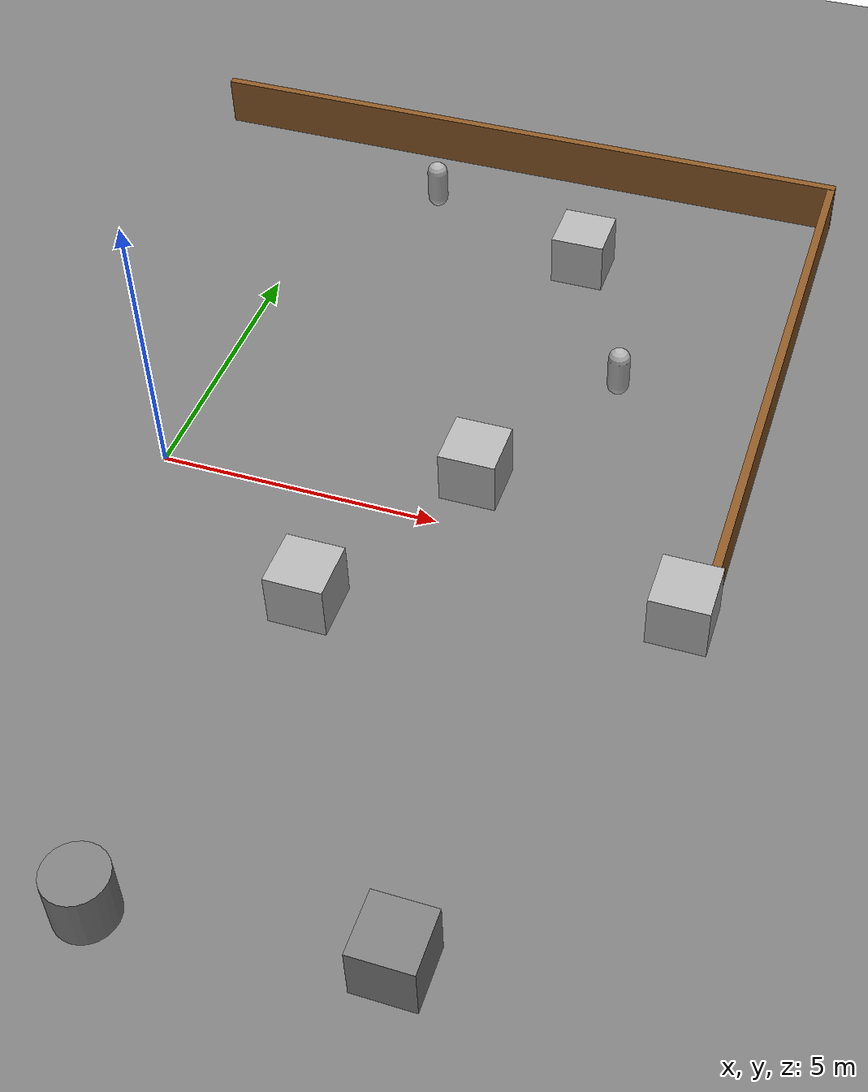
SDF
<sdf version="1.9">
 <world name="default">
  <model name="ground_plane">
   <static>true</static>
   <link name="link">
    <collision name="collision">
     <geometry><plane><normal>0 0 1</normal><size>100 100</size></plane></geometry>
     <surface><friction><ode><mu>100</mu><mu2>50</mu2></ode></friction></surface>
    </collision>
    <visual name="visual">
     <cast_shadows>false</cast_shadows>
     <geometry><plane><normal>0 0 1</normal><size>100 100</size></plane></geometry>
     <material>
      <ambient>0.5 0.5 0.5 1</ambient>
      <diffuse>0.5 0.5 0.5 1</diffuse>
      <specular>0.1 0.1 0.1 1</specular>
     </material>
    </visual>
    <inertial>
     <mass>1</mass>
     <inertia><ixx>1</ixx><ixy>0</ixy><ixz>0</ixz><iyy>1</iyy><iyz>0</iyz><izz>1</izz></inertia>
    </inertial>
   </link>
  </model>
  <model name="wooden_fence">
   <link name="Wall_14">
    <pose>6.425 0 -0.775596 0 -0 1.5708</pose>
    <inertial>
     <inertia><ixx>0</ixx><ixy>0</ixy><ixz>0</ixz><iyy>0</iyy><iyz>0</iyz><izz>0</izz></inertia>
     <mass>0</mass>
    </inertial>
    <visual name="Wall_14_Visual">
     <pose>0 0 1.25 0 -0 0</pose>
     <geometry><box><size>10.5 0.15 1.0201</size></box></geometry>
     <material>
      <ambient>0.55 0.35 0.15 1</ambient>
      <diffuse>0.55 0.35 0.15 1</diffuse>
      <shader type="pixel"/>
     </material>
     <meta><layer>0</layer></meta>
    </visual>
    <collision name="Wall_14_Collision">
     <pose>0 0 1.25 0 -0 0</pose>
     <geometry><box><size>10.5 0.15 1.0201</size></box></geometry>
     <surface>
      <friction>
       <ode><mu>1</mu><mu2>1</mu2><fdir1>0 0 0</fdir1><slip1>0</slip1><slip2>0</slip2></ode>
       <torsional>
        <coefficient>1</coefficient>
        <patch_radius>0</patch_radius>
        <surface_radius>0</surface_radius>
        <use_patch_radius>true</use_patch_radius>
        <ode><slip>0</slip></ode>
       </torsional>
      </friction>
      <bounce><restitution_coefficient>0</restitution_coefficient><threshold>1000000</threshold></bounce>
      <contact>
       <collide_without_contact>false</collide_without_contact>
       <collide_without_contact_bitmask>1</collide_without_contact_bitmask>
       <collide_bitmask>1</collide_bitmask>
       <ode>
        <soft_cfm>0</soft_cfm>
        <soft_erp>0.20000000000000001</soft_erp>
        <kp>10000000000000</kp>
        <kd>1</kd>
        <max_vel>0.01</max_vel>
        <min_depth>0</min_depth>
       </ode>
       <bullet>
        <split_impulse>true</split_impulse>
        <split_impulse_penetration_threshold>-0.01</split_impulse_penetration_threshold>
        <soft_cfm>0</soft_cfm>
        <soft_erp>0.20000000000000001</soft_erp>
        <kp>10000000000000</kp>
        <kd>1</kd>
       </bullet>
      </contact>
     </surface>
    </collision>
   </link>
   <link name="Wall_16">
    <pose>0 5.175 -0.744158 0 -0 3.14159</pose>
    <inertial>
     <inertia><ixx>0</ixx><ixy>0</ixy><ixz>0</ixz><iyy>0</iyy><iyz>0</iyz><izz>0</izz></inertia>
     <mass>0</mass>
    </inertial>
    <visual name="Wall_16_Visual">
     <pose>0 0 1.25 0 -0 0</pose>
     <geometry><box><size>13 0.15 0.970964</size></box></geometry>
     <material>
      <ambient>0.55 0.35 0.15 1</ambient>
      <diffuse>0.55 0.35 0.15 1</diffuse>
      <shader type="pixel"/>
     </material>
     <meta><layer>0</layer></meta>
    </visual>
    <collision name="Wall_16_Collision">
     <pose>0 0 1.25 0 -0 0</pose>
     <geometry><box><size>13 0.15 0.970964</size></box></geometry>
     <surface>
      <friction>
       <ode><mu>1</mu><mu2>1</mu2><fdir1>0 0 0</fdir1><slip1>0</slip1><slip2>0</slip2></ode>
       <torsional>
        <coefficient>1</coefficient>
        <patch_radius>0</patch_radius>
        <surface_radius>0</surface_radius>
        <use_patch_radius>true</use_patch_radius>
        <ode><slip>0</slip></ode>
       </torsional>
      </friction>
      <bounce><restitution_coefficient>0</restitution_coefficient><threshold>1000000</threshold></bounce>
      <contact>
       <collide_without_contact>false</collide_without_contact>
       <collide_without_contact_bitmask>1</collide_without_contact_bitmask>
       <collide_bitmask>1</collide_bitmask>
       <ode>
        <soft_cfm>0</soft_cfm>
        <soft_erp>0.20000000000000001</soft_erp>
        <kp>10000000000000</kp>
        <kd>1</kd>
        <max_vel>0.01</max_vel>
        <min_depth>0</min_depth>
       </ode>
       <bullet>
        <split_impulse>true</split_impulse>
        <split_impulse_penetration_threshold>-0.01</split_impulse_penetration_threshold>
        <soft_cfm>0</soft_cfm>
        <soft_erp>0.20000000000000001</soft_erp>
        <kp>10000000000000</kp>
        <kd>1</kd>
       </bullet>
      </contact>
     </surface>
    </collision>
   </link>
   <static>true</static>
   <pose>3.4044 4.80916 0 0 -0 0</pose>
  </model>
  <model name="unit_box">
   <pose>7.18094 -7.86108 0.5 0 -0 0</pose>
   <link name="link">
    <inertial>
     <mass>1</mass>
     <inertia>
      <ixx>0.16666700000000001</ixx>
      <ixy>0</ixy>
      <ixz>0</ixz>
      <iyy>0.16666700000000001</iyy>
      <iyz>0</iyz>
      <izz>0.16666700000000001</izz>
     </inertia>
    </inertial>
    <collision name="collision"><geometry><box><size>1 1 1</size></box></geometry></collision>
    <visual name="visual">
     <geometry><box><size>1 1 1</size></box></geometry>
     <material>
      <ambient>0.5 0.5 0.5 1</ambient>
      <diffuse>0.5 0.5 0.5 1</diffuse>
      <specular>0.1 0.1 0.1 1</specular>
     </material>
    </visual>
   </link>
   <static>false</static>
  </model>
  <model name="unit_cylinder">
   <pose>2.83688 -8.3326 0.5 0 -0 0</pose>
   <link name="link">
    <inertial>
     <mass>1</mass>
     <inertia>
      <ixx>0.14583299999999999</ixx>
      <ixy>0</ixy>
      <ixz>0</ixz>
      <iyy>0.14583299999999999</iyy>
      <iyz>0</iyz>
      <izz>0.125</izz>
     </inertia>
    </inertial>
    <collision name="collision">
     <geometry><cylinder><radius>0.5</radius><length>1</length></cylinder></geometry>
    </collision>
    <visual name="visual">
     <geometry><cylinder><radius>0.5</radius><length>1</length></cylinder></geometry>
     <material>
      <ambient>0.5 0.5 0.5 1</ambient>
      <diffuse>0.5 0.5 0.5 1</diffuse>
      <specular>0.1 0.1 0.1 1</specular>
     </material>
    </visual>
   </link>
   <static>false</static>
  </model>
  <model name="box_0">
   <pose>9.46219 -0.940838 0.5 0 -0 -6e-06</pose>
   <link name="box_link">
    <inertial>
     <inertia><ixx>0.16666</ixx><ixy>0</ixy><ixz>0</ixz><iyy>0.16666</iyy><iyz>0</iyz><izz>0.16666</izz></inertia>
     <mass>1</mass>
    </inertial>
    <collision name="box_collision"><geometry><box><size>1 1 1</size></box></geometry></collision>
    <visual name="box_visual">
     <geometry><box><size>1 1 1</size></box></geometry>
     <material>
      <ambient>0.3 0.3 0.3 1</ambient>
      <diffuse>0.7 0.7 0.7 1</diffuse>
      <specular>1 1 1 1</specular>
     </material>
    </visual>
   </link>
   <static>false</static>
  </model>
  <model name="box_1">
   <pose>3.65113 -2.32239 0.5 0 0 -0</pose>
   <link name="box_link">
    <inertial>
     <inertia><ixx>0.16666</ixx><ixy>0</ixy><ixz>0</ixz><iyy>0.16666</iyy><iyz>0</iyz><izz>0.16666</izz></inertia>
     <mass>1</mass>
    </inertial>
    <collision name="box_collision"><geometry><box><size>1 1 1</size></box></geometry></collision>
    <visual name="box_visual">
     <geometry><box><size>1 1 1</size></box></geometry>
     <material>
      <ambient>0.3 0.3 0.3 1</ambient>
      <diffuse>0.7 0.7 0.7 1</diffuse>
      <specular>1 1 1 1</specular>
     </material>
    </visual>
   </link>
   <static>false</static>
  </model>
  <model name="box_4">
   <pose>5.5223 7.21539 0.5 0 0 -0</pose>
   <link name="box_link">
    <inertial>
     <inertia><ixx>0.16666</ixx><ixy>0</ixy><ixz>0</ixz><iyy>0.16666</iyy><iyz>0</iyz><izz>0.16666</izz></inertia>
     <mass>1</mass>
    </inertial>
    <collision name="box_collision"><geometry><box><size>1 1 1</size></box></geometry></collision>
    <visual name="box_visual">
     <geometry><box><size>1 1 1</size></box></geometry>
     <material>
      <ambient>0.3 0.3 0.3 1</ambient>
      <diffuse>0.7 0.7 0.7 1</diffuse>
      <specular>1 1 1 1</specular>
     </material>
    </visual>
   </link>
   <static>false</static>
  </model>
  <model name="box_6">
   <pose>5.36196 1.03752 0.5 0 0 -0</pose>
   <link name="box_link">
    <inertial>
     <inertia><ixx>0.16666</ixx><ixy>0</ixy><ixz>0</ixz><iyy>0.16666</iyy><iyz>0</iyz><izz>0.16666</izz></inertia>
     <mass>1</mass>
    </inertial>
    <collision name="box_collision"><geometry><box><size>1 1 1</size></box></geometry></collision>
    <visual name="box_visual">
     <geometry><box><size>1 1 1</size></box></geometry>
     <material>
      <ambient>0.3 0.3 0.3 1</ambient>
      <diffuse>0.7 0.7 0.7 1</diffuse>
      <specular>1 1 1 1</specular>
     </material>
    </visual>
   </link>
   <static>false</static>
  </model>
  <model name="capsule_0">
   <pose>7.07747 4.02448 0.5 0 -0 0</pose>
   <link name="capsule_link">
    <inertial>
     <inertia>
      <ixx>0.074153999999999998</ixx>
      <ixy>0</ixy>
      <ixz>0</ixz>
      <iyy>0.074153999999999998</iyy>
      <iyz>0</iyz>
      <izz>0.018769000000000001</izz>
     </inertia>
     <mass>1</mass>
    </inertial>
    <collision name="capsule_collision">
     <geometry>
      <capsule><radius>0.20000000000000001</radius><length>0.59999999999999998</length></capsule>
     </geometry>
    </collision>
    <visual name="capsule_visual">
     <geometry>
      <capsule><radius>0.20000000000000001</radius><length>0.59999999999999998</length></capsule>
     </geometry>
     <material>
      <ambient>0.3 0.3 0.3 1</ambient>
      <diffuse>0.7 0.7 0.7 1</diffuse>
      <specular>1 1 1 1</specular>
     </material>
    </visual>
   </link>
   <static>false</static>
  </model>
  <model name="capsule_1">
   <pose>2.11667 8.39699 0.5 0 -0 0</pose>
   <link name="capsule_link">
    <inertial>
     <inertia>
      <ixx>0.074153999999999998</ixx>
      <ixy>0</ixy>
      <ixz>0</ixz>
      <iyy>0.074153999999999998</iyy>
      <iyz>0</iyz>
      <izz>0.018769000000000001</izz>
     </inertia>
     <mass>1</mass>
    </inertial>
    <collision name="capsule_collision">
     <geometry>
      <capsule><radius>0.20000000000000001</radius><length>0.59999999999999998</length></capsule>
     </geometry>
    </collision>
    <visual name="capsule_visual">
     <geometry>
      <capsule><radius>0.20000000000000001</radius><length>0.59999999999999998</length></capsule>
     </geometry>
     <material>
      <ambient>0.3 0.3 0.3 1</ambient>
      <diffuse>0.7 0.7 0.7 1</diffuse>
      <specular>1 1 1 1</specular>
     </material>
    </visual>
   </link>
   <static>false</static>
  </model>
 </world>
</sdf>
